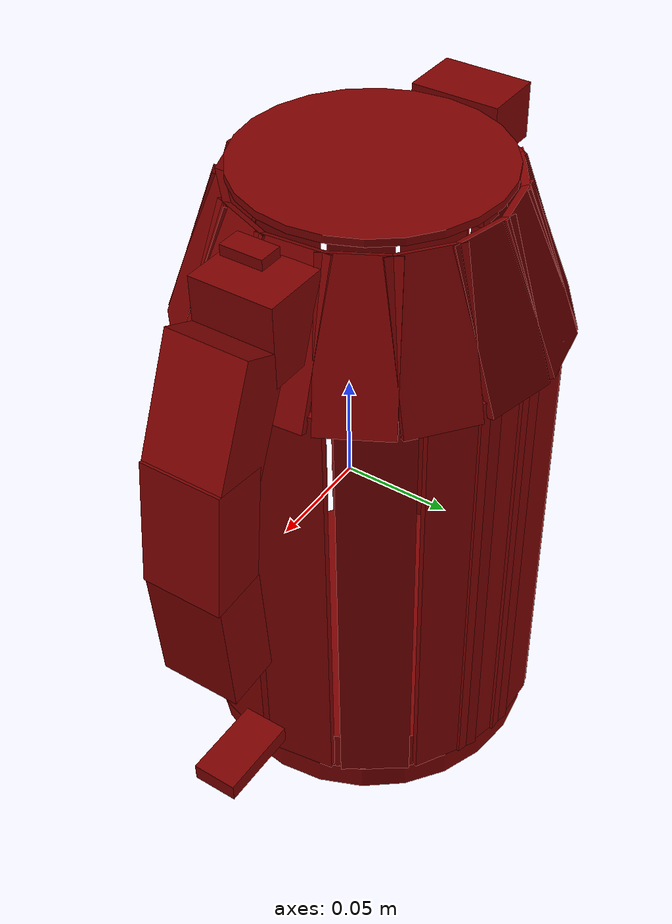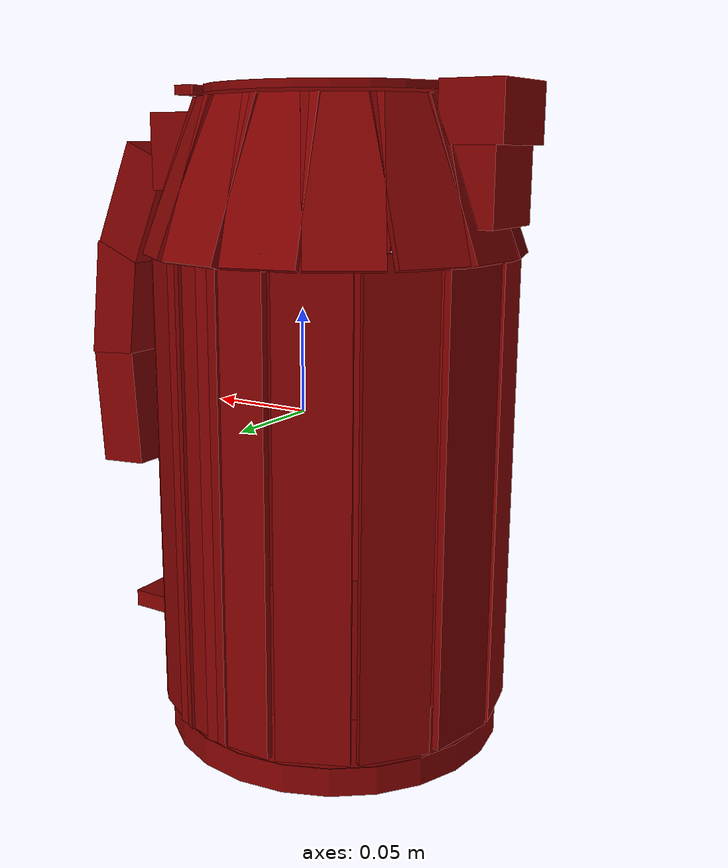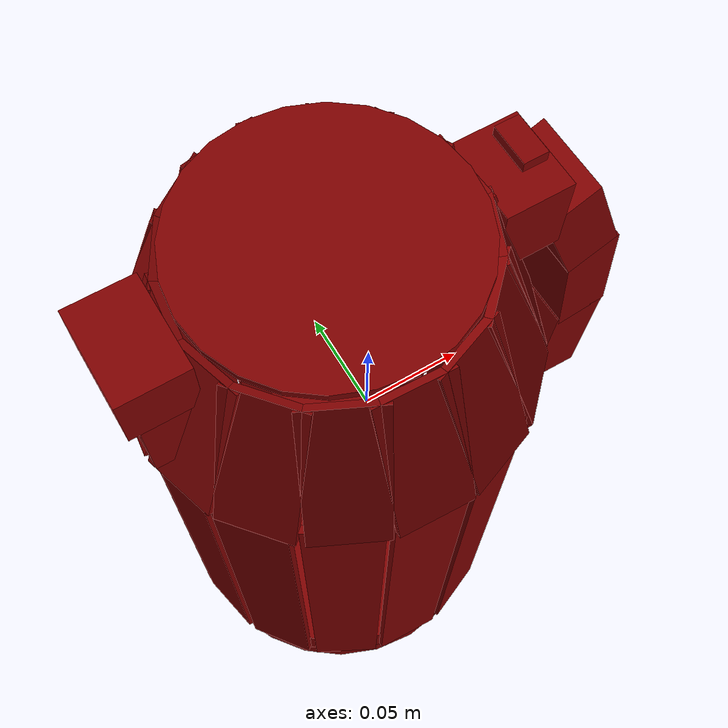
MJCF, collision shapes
<?xml version='1.0' encoding='UTF-8'?>
<mujoco model="model">
  <compiler angle="radian"/>
  <asset>
    <mesh file="visuals/Body001.obj" name="Body001_vis"/>
    <mesh file="visuals/Button001.obj" name="Button001_vis"/>
    <mesh file="visuals/Handle001.obj" name="Handle001_vis"/>
    <mesh file="visuals/Lever001.obj" name="Lever001_vis"/>
    <mesh file="visuals/Lid001.obj" name="Lid001_vis"/>
    <texture file="visuals/T_BC001.png" name="Body001_material" type="2d"/>
    <material name="Body001_material" rgba="1 1 1 1.0" texture="Body001_material" shininess="0.2512328028678894" specular="0.3103448502657381"/>
    <texture file="visuals/T_BC001.png" name="Handle001_material" type="2d"/>
    <material name="Handle001_material" rgba="1 1 1 1.0" texture="Handle001_material" shininess="0.2512328028678894" specular="0.3103448502657381"/>
    <texture file="visuals/T_BC001.png" name="Button001_material" type="2d"/>
    <material name="Button001_material" rgba="1 1 1 1.0" texture="Button001_material" shininess="0.2512328028678894" specular="0.3103448502657381"/>
    <texture file="visuals/T_BC001.png" name="Lever001_material" type="2d"/>
    <material name="Lever001_material" rgba="1 1 1 1.0" texture="Lever001_material" shininess="0.2512328028678894" specular="0.3103448502657381"/>
    <texture file="visuals/T_BC001.png" name="Lid001_material" type="2d"/>
    <material name="Lid001_material" rgba="1 1 1 1.0" texture="Lid001_material" shininess="0.2512328028678894" specular="0.3103448502657381"/>
  </asset>
  <default>
    <default class="visual">
      <geom conaffinity="0" contype="0" group="1" type="mesh"/>
    </default>
    <default class="collision">
      <geom group="0" rgba="0.5 0 0 0.5"/>
    </default>
    <default class="spawn">
      <geom group="0" rgba="1 1 1 0.5" contype="0" conaffinity="0"/>
      <site group="0" rgba="1 1 1 0.5"/>
    </default>
    <default class="region">
      <geom group="1" conaffinity="0" contype="0" rgba="0 1 0 0"/>
    </default>
  </default>
  <worldbody>
    <body>
      <body name="object">
        <geom mesh="Body001_vis" type="mesh" solimp="0.998 0.998 0.001" solref="0.001 1" density="100" friction="0.95 0.3 0.1" class="visual" material="Body001_material"/>
        <geom class="collision" type="cylinder" pos="-0.018108326941728592 -0.0006624766974709928 -0.14713948965072632" size="0.08153709024190903 0.006818325724452734" quat="0.7096360921859741 0.0 0.0 -0.7045683860778809"/>
        <body name="Handle001">
          <joint axis="0.0 0.0 1.0" pos="0.0 0.0 0.006350219249725342" limited="true" name="Handle001_joint" range="0.0 0.05" type="slide" damping="1" frictionloss="1" armature=".01" stiffness="0.05"/>
          <geom mesh="Handle001_vis" type="mesh" solimp="0.998 0.998 0.001" solref="0.001 1" density="100" friction="0.95 0.3 0.1" class="visual" material="Handle001_material"/>
          <geom class="collision" type="box" pos="-0.018790338188409805 0.080898717045784 -0.026227883994579315" size="0.016611983999609947 0.0018791129114106297 0.11082148551940918" quat="1.0 0.0 0.0 0.0"/>
          <geom class="collision" type="box" pos="-0.05309511348605156 0.07300466299057007 -0.026227883994579315" size="0.0017601862782612443 0.016599789261817932 0.11082148551940918" quat="0.5340399742126465 0.0 0.0 0.8454592227935791"/>
          <geom class="collision" type="box" pos="-0.08106117695569992 0.051064636558294296 -0.026227891445159912" size="0.001760187093168497 0.01659979671239853 0.11082148551940918" quat="0.33608707785606384 0.0 0.0 0.9418309330940247"/>
          <geom class="collision" type="box" pos="-0.0971735268831253 0.018485410138964653 -0.026227883994579315" size="0.0017601868603378534 0.01659979484975338 0.11082148551940918" quat="0.1168261244893074 0.0 0.0 0.993152379989624"/>
          <geom class="collision" type="box" pos="-0.09770772606134415 -0.0167118851095438 -0.026227883994579315" size="0.001760187209583819 0.01659979857504368 0.11082148551940918" quat="0.10117648541927338 0.0 -0.0 -0.9948685169219971"/>
          <geom class="collision" type="box" pos="-0.0830879881978035 -0.04911138489842415 -0.026227891445159912" size="0.001760187093168497 0.01659979671239853 0.11082148551940918" quat="0.3164283037185669 0.0 -0.0 -0.9486164450645447"/>
          <geom class="collision" type="box" pos="-0.055448129773139954 -0.07246952503919601 -0.026227883994579315" size="0.001760187209583819 0.01659979857504368 0.11082148551940918" quat="0.5198121666908264 0.0 0.0 -0.8542805910110474"/>
          <geom class="collision" type="box" pos="-0.021416597068309784 -0.08146889507770538 -0.026227883994579315" size="0.001760186511091888 0.01659979112446308 0.11082148551940918" quat="0.6925902962684631 0.0 0.0 -0.7213311791419983"/>
          <geom class="collision" type="box" pos="0.013551012612879276 -0.07508663088083267 -0.026227891445159912" size="0.0017601868603378534 0.01659979484975338 0.11082148551940918" quat="0.8336514830589294 0.0 0.0 -0.5522909164428711"/>
          <geom class="collision" type="box" pos="0.042671091854572296 -0.054127395153045654 -0.026227883994579315" size="0.001760187093168497 0.01659979671239853 0.11082148551940918" quat="0.9350507855415344 0.0 -0.0 -0.3545137643814087"/>
          <geom class="collision" type="box" pos="0.05972573533654213 -0.023333342745900154 -0.026227883994579315" size="0.0017601866275072098 0.01659979298710823 0.11082148551940918" quat="0.989656925201416 0.0 0.0 -0.14345452189445496"/>
          <geom class="collision" type="box" pos="0.06209563463926315 0.012132828123867512 -0.026227891445159912" size="0.0017601866275072098 0.01659979298710823 0.11082148551940918" quat="0.9970629215240479 0.0 0.0 0.07658646255731583"/>
          <geom class="collision" type="box" pos="0.04870626702904701 0.04578028619289398 -0.026227883994579315" size="0.001760187093168497 0.01659979671239853 0.11082148551940918" quat="0.9548942446708679 0.0 0.0 0.29694607853889465"/>
          <geom class="collision" type="box" pos="0.022921094670891762 0.06974396109580994 -0.026227883994579315" size="0.001760187209583819 0.01659979857504368 0.11082148551940918" quat="0.8678510189056396 0.0 0.0 0.49682456254959106"/>
          <geom class="collision" type="box" pos="0.0023084322456270456 0.0782790407538414 -0.026227891445159912" size="0.0017601876752451062 0.016599802300333977 0.11082148551940918" quat="0.7913896441459656 0.0 0.0 0.6113120317459106"/>
          <geom class="collision" type="box" pos="0.10420307517051697 0.0001693825761321932 -0.007691588252782822" size="0.019023746252059937 0.012742114253342152 0.02920333854854107" quat="0.704201877117157 0.02272380143404007 0.02288724295794964 0.7092669010162354"/>
          <geom class="collision" type="box" pos="0.103641077876091 0.00016535572649445385 0.048298466950654984" size="0.019023746252059937 0.01274210587143898 0.029203318059444427" quat="0.7033147811889648 -0.04201327636837959 -0.04231545701622963 0.7083732485771179"/>
          <geom class="collision" type="box" pos="0.08925776183605194 6.226915866136551e-05 0.09831830114126205" size="0.019023746252059937 0.012742115184664726 0.026753172278404236" quat="0.689780056476593 -0.1435977965593338 -0.14463050663471222 0.6947410702705383"/>
          <geom class="collision" type="box" pos="0.059940606355667114 -0.00014784187078475952 0.12295284122228622" size="0.01503242738544941 0.019130021333694458 0.01822943240404129" quat="1.0 0.0 0.0 0.0"/>
          <geom class="collision" type="box" pos="-0.09273429960012436 -0.0006881657755002379 0.11044296622276306" size="0.01204189844429493 0.019108587875962257 0.01822943240404129" quat="1.0 0.0 0.0 0.0"/>
          <geom class="collision" type="box" pos="-0.0946984812617302 0.00059803097974509 0.1388484239578247" size="0.01452756579965353 0.021035488694906235 0.012981558218598366" quat="1.0 0.0 0.0 0.0"/>
          <geom class="collision" type="box" pos="-0.02103610895574093 -0.07211348414421082 0.11190705001354218" size="0.001760187093168497 0.016599802300333977 0.03618008270859718" quat="0.6818374991416931 -0.1266142874956131 -0.1215694397687912 -0.7101318836212158"/>
          <geom class="collision" type="box" pos="-0.04952993988990784 -0.06505733728408813 0.11190705001354218" size="0.001760187093168497 0.01659979671239853 0.03618008270859718" quat="0.5235362648963928 -0.1486506164073944 -0.0933447927236557 -0.8337262868881226"/>
          <geom class="collision" type="box" pos="-0.0735338032245636 -0.04648539796471596 0.11190705001354218" size="0.001760187093168497 0.01659979671239853 0.03618008270859718" quat="0.33695188164711 -0.16492722928524017 -0.06007745489478111 -0.9250152111053467"/>
          <geom class="collision" type="box" pos="-0.0874096006155014 -0.0210333950817585 0.11190705001354218" size="0.001760187093168497 0.01659979671239853 0.03618008270859718" quat="0.1447344869375229 -0.17362122237682343 -0.025805696845054626 -0.9737769961357117"/>
          <geom class="collision" type="box" pos="-0.09013556689023972 0.008194275200366974 0.11190705001354218" size="0.001760187093168497 0.01659979857504368 0.03618008270859718" quat="0.055894140154123306 0.17524529993534088 -0.00996573269367218 0.9828863739967346"/>
          <geom class="collision" type="box" pos="-0.08050940930843353 0.03697690740227699 0.11190705001354218" size="0.001760187093168497 0.01659979671239853 0.03618008270859718" quat="0.26087746024131775 0.16925351321697235 -0.04651358351111412 0.9492800831794739"/>
          <geom class="collision" type="box" pos="-0.0591258741915226 0.059828441590070724 0.11190705001354218" size="0.001760187093168497 0.01659979671239853 0.03618008270859718" quat="0.4600856602191925 0.15518072247505188 -0.08203176409006119 0.8703510165214539"/>
          <geom class="collision" type="box" pos="-0.03204451501369476 0.07115485519170761 0.11190705001354218" size="0.001760187093168497 0.016599800437688828 0.03618008270859718" quat="0.6271396279335022 0.13530424237251282 -0.11181693524122238 0.75887131690979"/>
          <geom class="collision" type="box" pos="-0.001700685010291636 0.07055947184562683 0.11190705001354218" size="0.001760187093168497 0.01659979484975338 0.03618008270859718" quat="0.772404670715332 0.10883127897977829 -0.13771727681159973 0.6103939414024353"/>
          <geom class="collision" type="box" pos="0.026191748678684235 0.0572076179087162 0.11190705001354218" size="0.001760187093168497 0.01659979671239853 0.03618008270859718" quat="0.8850404620170593 0.07687317579984665 -0.15779981017112732 0.431153267621994"/>
          <geom class="collision" type="box" pos="0.04520406946539879 0.03484204038977623 0.11190705001354218" size="0.001760187093168497 0.01659979671239853 0.03618008270859718" quat="0.9541215896606445 0.04324999079108238 -0.17011673748493195 0.24257312715053558"/>
          <geom class="collision" type="box" pos="0.05384738743305206 0.005749154835939407 0.11190705001354218" size="0.001760187093168497 0.016599802300333977 0.03618008270859718" quat="0.9837794899940491 0.006593675818294287 -0.17540474236011505 0.03698144853115082"/>
          <geom class="collision" type="box" pos="0.04895538464188576 -0.02654208056628704 0.11190705001354218" size="0.001760187093168497 0.01659979671239853 0.03618008270859718" quat="0.9667247533798218 -0.033180925995111465 -0.17236389219760895 -0.1860993504524231"/>
          <geom class="collision" type="box" pos="0.03280798718333244 -0.05105634406208992 0.11190704256296158" size="0.001760187093168497 0.01659979671239853 0.03618008270859718" quat="0.9088420271873474 -0.06746967881917953 -0.16204357147216797 -0.3784123659133911"/>
          <geom class="collision" type="box" pos="0.007299036253243685 -0.067500039935112 0.11190705001354218" size="0.001760187093168497 0.01659979671239853 0.03618008270859718" quat="0.8092139363288879 -0.09996749460697174 -0.14428018033504486 -0.5606804490089417"/>
          <geom class="collision" type="cylinder" pos="-0.018108326941728592 -0.0006624766974709928 -0.12834641337394714" size="0.08153709024190903 0.01166202686727047" quat="0.7096360921859741 0.0 0.0 -0.7045683860778809"/>
          <body name="Button001">
            <joint axis="0.0 0.0 -1.0" pos="0.06169771030545235 0.000157114613102749 0.15257184207439423" limited="true" name="Button001_joint" range="0.0 0.0015" type="slide" damping="1" frictionloss="1" armature=".01" stiffness="0.05" springref="-1"/>
            <geom mesh="Button001_vis" type="mesh" solimp="0.998 0.998 0.001" solref="0.001 1" density="100" friction="0.95 0.3 0.1" class="visual" material="Button001_material"/>
            <geom class="collision" type="box" pos="0.06182156503200531 2.300558662682306e-05 0.15163686871528625" size="0.005403214134275913 0.009586322121322155 0.002321062609553337" quat="1.0 0.0 0.0 0.0"/>
          </body>
          <body name="Lever001">
            <joint axis="0.0 1.0 0.0" pos="0.0632716566324234 -0.005025056656450033 -0.1206875666975975" limited="true" name="Lever001_joint" range="0.0 0.2617993877991494" type="hinge" damping="1" frictionloss="1" armature=".01" stiffness="1"/>
            <geom mesh="Lever001_vis" type="mesh" solimp="0.998 0.998 0.001" solref="0.001 1" density="100" friction="0.95 0.3 0.1" class="visual" material="Lever001_material"/>
            <geom class="collision" type="box" pos="0.08790402114391327 -0.005273985676467419 -0.12042294442653656" size="0.02043769881129265 0.011221164837479591 0.004517651163041592" quat="1.0 0.0 0.0 0.0"/>
          </body>
          <body name="Lid001">
            <joint axis="0.0 1.0 0.0" pos="0.041840940713882446 0.0003328040475025773 0.15140919387340546" limited="true" name="Lid001_joint" range="0.0 1.5707963267948966" type="hinge" damping="1" frictionloss="1" armature=".01" stiffness="0.05"/>
            <geom mesh="Lid001_vis" type="mesh" solimp="0.998 0.998 0.001" solref="0.001 1" density="100" friction="0.95 0.3 0.1" class="visual" material="Lid001_material"/>
            <geom class="collision" type="cylinder" pos="-0.01811475306749344 0.00023516306828241795 0.14987485110759735" size="0.05922703072428703 0.0017434974433854222" quat="0.7045683860778809 0.0 0.0 0.7096360921859741"/>
          </body>
        </body>
        <geom class="region" name="reg_main" type="box" pos="-3.725290298461914e-09 0.0 -7.450580596923828e-09" size="0.11972430348396301 0.08372127264738083 0.15395790338516235"/>
      </body>
    </body>
  </worldbody>
  <actuator>
    <motor name="Handle001_joint_actuator" joint="Handle001_joint" gear="10"/>
    <motor name="Button001_joint_actuator" joint="Button001_joint" gear="0.5"/>
    <motor name="Lever001_joint_actuator" joint="Lever001_joint" gear="0.5"/>
    <motor name="Lid001_joint_actuator" joint="Lid001_joint" gear="0.5"/>
  </actuator>
</mujoco>
